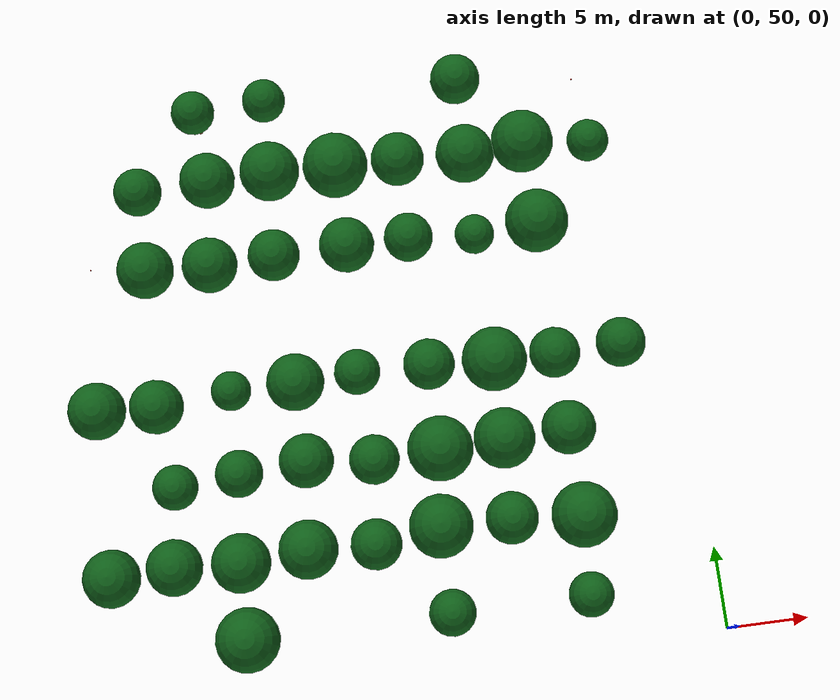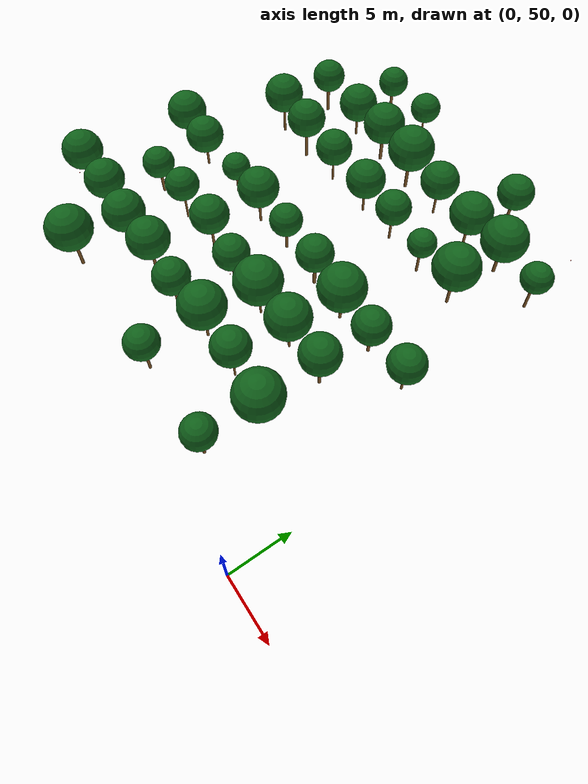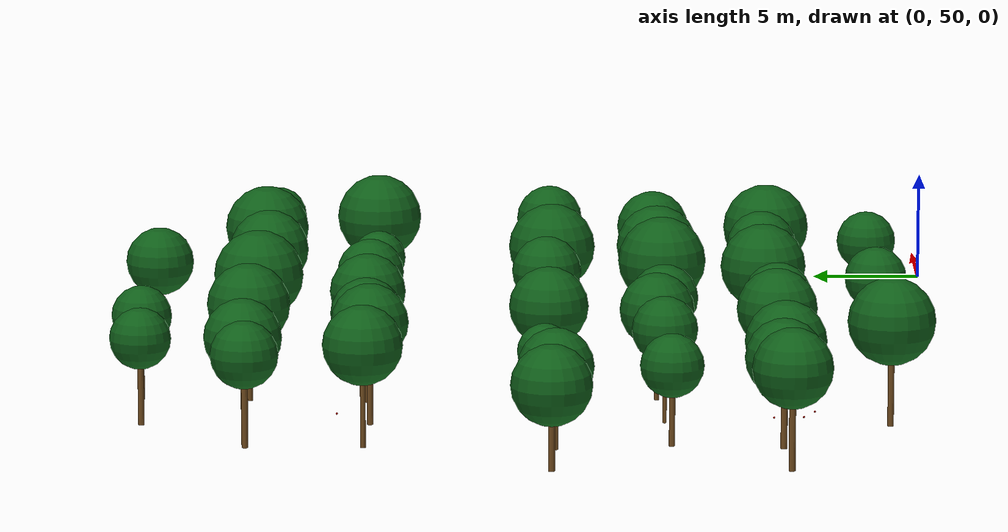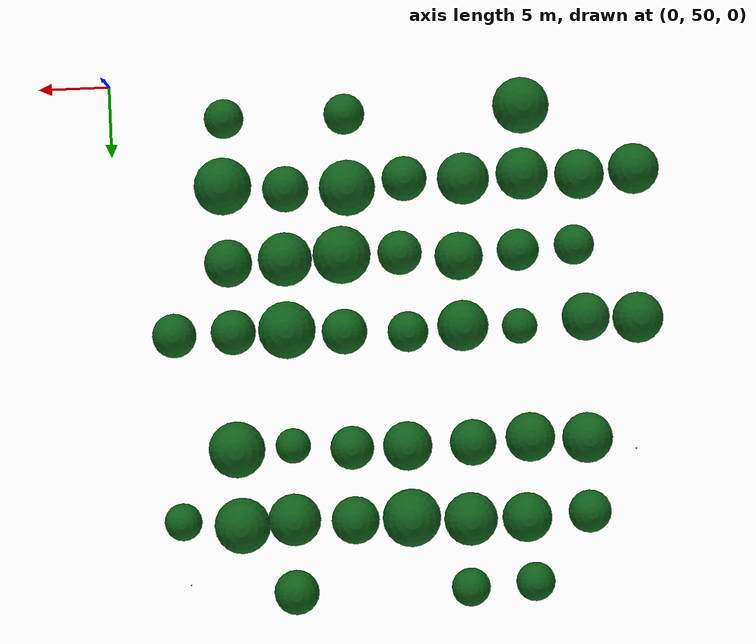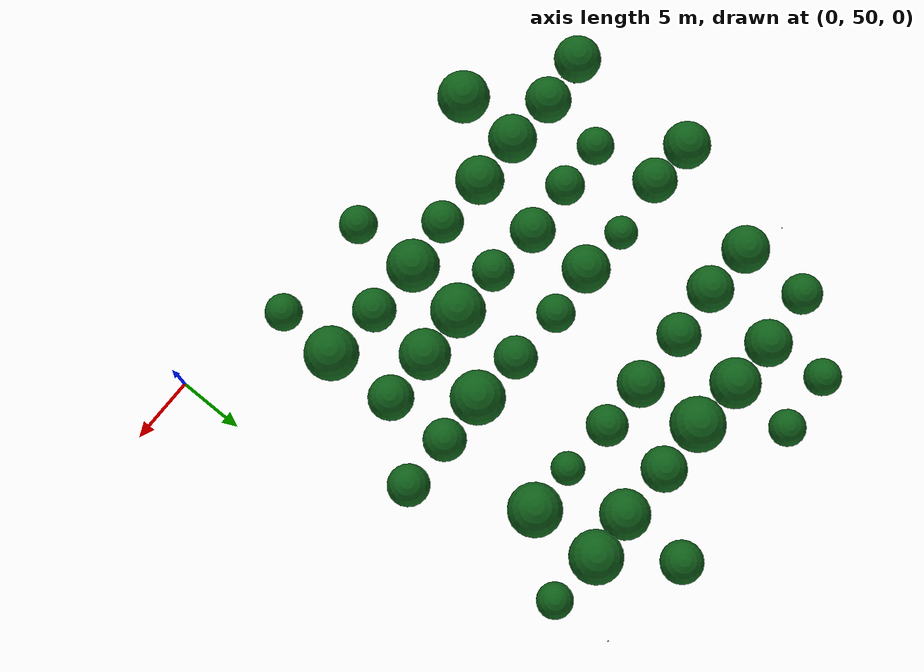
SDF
<sdf version="1.9">
 <world name="cheongsong_orchard">
  <model name="apple_tree_1766">
   <static>true</static>
   <pose>-28.48 52.96 0 0 0 0</pose>
   <link name="link">
    <collision name="trunk_col">
     <pose>0 0 1.37 0 0 0</pose>
     <geometry><cylinder><radius>0.135</radius><length>2.75</length></cylinder></geometry>
    </collision>
    <visual name="trunk_vis">
     <pose>0 0 1.37 0 0 0</pose>
     <geometry><cylinder><radius>0.135</radius><length>2.75</length></cylinder></geometry>
     <material><ambient>0.35 0.22 0.08 1</ambient><diffuse>0.45 0.30 0.12 1</diffuse></material>
    </visual>
    <collision name="canopy_col">
     <pose>0 0 4.67 0 0 0</pose>
     <geometry><sphere><radius>1.92</radius></sphere></geometry>
    </collision>
    <visual name="canopy_vis">
     <pose>0 0 4.67 0 0 0</pose>
     <geometry><sphere><radius>1.92</radius></sphere></geometry>
     <material><ambient>0.04 0.28 0.06 1</ambient><diffuse>0.06 0.38 0.10 1</diffuse></material>
    </visual>
   </link>
  </model>
  <model name="apple_tree_1769">
   <static>true</static>
   <pose>-16.44 52.99 0 0 0 0</pose>
   <link name="link">
    <collision name="trunk_col">
     <pose>0 0 1.19 0 0 0</pose>
     <geometry><cylinder><radius>0.117</radius><length>2.39</length></cylinder></geometry>
    </collision>
    <visual name="trunk_vis">
     <pose>0 0 1.19 0 0 0</pose>
     <geometry><cylinder><radius>0.117</radius><length>2.39</length></cylinder></geometry>
     <material><ambient>0.35 0.22 0.08 1</ambient><diffuse>0.45 0.30 0.12 1</diffuse></material>
    </visual>
    <collision name="canopy_col">
     <pose>0 0 3.78 0 0 0</pose>
     <geometry><sphere><radius>1.40</radius></sphere></geometry>
    </collision>
    <visual name="canopy_vis">
     <pose>0 0 3.78 0 0 0</pose>
     <geometry><sphere><radius>1.40</radius></sphere></geometry>
     <material><ambient>0.04 0.28 0.06 1</ambient><diffuse>0.06 0.38 0.10 1</diffuse></material>
    </visual>
   </link>
  </model>
  <model name="apple_tree_1771">
   <static>true</static>
   <pose>-8.17 52.98 0 0 0 0</pose>
   <link name="link">
    <collision name="trunk_col">
     <pose>0 0 1.13 0 0 0</pose>
     <geometry><cylinder><radius>0.124</radius><length>2.26</length></cylinder></geometry>
    </collision>
    <visual name="trunk_vis">
     <pose>0 0 1.13 0 0 0</pose>
     <geometry><cylinder><radius>0.124</radius><length>2.26</length></cylinder></geometry>
     <material><ambient>0.35 0.22 0.08 1</ambient><diffuse>0.45 0.30 0.12 1</diffuse></material>
    </visual>
    <collision name="canopy_col">
     <pose>0 0 3.62 0 0 0</pose>
     <geometry><sphere><radius>1.36</radius></sphere></geometry>
    </collision>
    <visual name="canopy_vis">
     <pose>0 0 3.62 0 0 0</pose>
     <geometry><sphere><radius>1.36</radius></sphere></geometry>
     <material><ambient>0.04 0.28 0.06 1</ambient><diffuse>0.06 0.38 0.10 1</diffuse></material>
    </visual>
   </link>
  </model>
  <model name="apple_tree_1820">
   <static>true</static>
   <pose>-36.03 57.55 0 0 0 0</pose>
   <link name="link">
    <collision name="trunk_col">
     <pose>0 0 1.37 0 0 0</pose>
     <geometry><cylinder><radius>0.141</radius><length>2.73</length></cylinder></geometry>
    </collision>
    <visual name="trunk_vis">
     <pose>0 0 1.37 0 0 0</pose>
     <geometry><cylinder><radius>0.141</radius><length>2.73</length></cylinder></geometry>
     <material><ambient>0.35 0.22 0.08 1</ambient><diffuse>0.45 0.30 0.12 1</diffuse></material>
    </visual>
    <collision name="canopy_col">
     <pose>0 0 4.46 0 0 0</pose>
     <geometry><sphere><radius>1.73</radius></sphere></geometry>
    </collision>
    <visual name="canopy_vis">
     <pose>0 0 4.46 0 0 0</pose>
     <geometry><sphere><radius>1.73</radius></sphere></geometry>
     <material><ambient>0.04 0.28 0.06 1</ambient><diffuse>0.06 0.38 0.10 1</diffuse></material>
    </visual>
   </link>
  </model>
  <model name="apple_tree_1821">
   <static>true</static>
   <pose>-32.37 57.75 0 0 0 0</pose>
   <link name="link">
    <collision name="trunk_col">
     <pose>0 0 1.16 0 0 0</pose>
     <geometry><cylinder><radius>0.139</radius><length>2.31</length></cylinder></geometry>
    </collision>
    <visual name="trunk_vis">
     <pose>0 0 1.16 0 0 0</pose>
     <geometry><cylinder><radius>0.139</radius><length>2.31</length></cylinder></geometry>
     <material><ambient>0.35 0.22 0.08 1</ambient><diffuse>0.45 0.30 0.12 1</diffuse></material>
    </visual>
    <collision name="canopy_col">
     <pose>0 0 4.01 0 0 0</pose>
     <geometry><sphere><radius>1.70</radius></sphere></geometry>
    </collision>
    <visual name="canopy_vis">
     <pose>0 0 4.01 0 0 0</pose>
     <geometry><sphere><radius>1.70</radius></sphere></geometry>
     <material><ambient>0.04 0.28 0.06 1</ambient><diffuse>0.06 0.38 0.10 1</diffuse></material>
    </visual>
   </link>
  </model>
  <model name="apple_tree_1822">
   <static>true</static>
   <pose>-28.47 57.53 0 0 0 0</pose>
   <link name="link">
    <collision name="trunk_col">
     <pose>0 0 0.99 0 0 0</pose>
     <geometry><cylinder><radius>0.113</radius><length>1.98</length></cylinder></geometry>
    </collision>
    <visual name="trunk_vis">
     <pose>0 0 0.99 0 0 0</pose>
     <geometry><cylinder><radius>0.113</radius><length>1.98</length></cylinder></geometry>
     <material><ambient>0.35 0.22 0.08 1</ambient><diffuse>0.45 0.30 0.12 1</diffuse></material>
    </visual>
    <collision name="canopy_col">
     <pose>0 0 3.77 0 0 0</pose>
     <geometry><sphere><radius>1.79</radius></sphere></geometry>
    </collision>
    <visual name="canopy_vis">
     <pose>0 0 3.77 0 0 0</pose>
     <geometry><sphere><radius>1.79</radius></sphere></geometry>
     <material><ambient>0.04 0.28 0.06 1</ambient><diffuse>0.06 0.38 0.10 1</diffuse></material>
    </visual>
   </link>
  </model>
  <model name="apple_tree_1823">
   <static>true</static>
   <pose>-24.40 57.76 0 0 0 0</pose>
   <link name="link">
    <collision name="trunk_col">
     <pose>0 0 1.24 0 0 0</pose>
     <geometry><cylinder><radius>0.133</radius><length>2.48</length></cylinder></geometry>
    </collision>
    <visual name="trunk_vis">
     <pose>0 0 1.24 0 0 0</pose>
     <geometry><cylinder><radius>0.133</radius><length>2.48</length></cylinder></geometry>
     <material><ambient>0.35 0.22 0.08 1</ambient><diffuse>0.45 0.30 0.12 1</diffuse></material>
    </visual>
    <collision name="canopy_col">
     <pose>0 0 4.25 0 0 0</pose>
     <geometry><sphere><radius>1.78</radius></sphere></geometry>
    </collision>
    <visual name="canopy_vis">
     <pose>0 0 4.25 0 0 0</pose>
     <geometry><sphere><radius>1.78</radius></sphere></geometry>
     <material><ambient>0.04 0.28 0.06 1</ambient><diffuse>0.06 0.38 0.10 1</diffuse></material>
    </visual>
   </link>
  </model>
  <model name="apple_tree_1824">
   <static>true</static>
   <pose>-20.39 57.57 0 0 0 0</pose>
   <link name="link">
    <collision name="trunk_col">
     <pose>0 0 1.14 0 0 0</pose>
     <geometry><cylinder><radius>0.096</radius><length>2.29</length></cylinder></geometry>
    </collision>
    <visual name="trunk_vis">
     <pose>0 0 1.14 0 0 0</pose>
     <geometry><cylinder><radius>0.096</radius><length>2.29</length></cylinder></geometry>
     <material><ambient>0.35 0.22 0.08 1</ambient><diffuse>0.45 0.30 0.12 1</diffuse></material>
    </visual>
    <collision name="canopy_col">
     <pose>0 0 3.83 0 0 0</pose>
     <geometry><sphere><radius>1.54</radius></sphere></geometry>
    </collision>
    <visual name="canopy_vis">
     <pose>0 0 3.83 0 0 0</pose>
     <geometry><sphere><radius>1.54</radius></sphere></geometry>
     <material><ambient>0.04 0.28 0.06 1</ambient><diffuse>0.06 0.38 0.10 1</diffuse></material>
    </visual>
   </link>
  </model>
  <model name="apple_tree_1825">
   <static>true</static>
   <pose>-16.45 58.09 0 0 0 0</pose>
   <link name="link">
    <collision name="trunk_col">
     <pose>0 0 1.20 0 0 0</pose>
     <geometry><cylinder><radius>0.109</radius><length>2.40</length></cylinder></geometry>
    </collision>
    <visual name="trunk_vis">
     <pose>0 0 1.20 0 0 0</pose>
     <geometry><cylinder><radius>0.109</radius><length>2.40</length></cylinder></geometry>
     <material><ambient>0.35 0.22 0.08 1</ambient><diffuse>0.45 0.30 0.12 1</diffuse></material>
    </visual>
    <collision name="canopy_col">
     <pose>0 0 4.32 0 0 0</pose>
     <geometry><sphere><radius>1.92</radius></sphere></geometry>
    </collision>
    <visual name="canopy_vis">
     <pose>0 0 4.32 0 0 0</pose>
     <geometry><sphere><radius>1.92</radius></sphere></geometry>
     <material><ambient>0.04 0.28 0.06 1</ambient><diffuse>0.06 0.38 0.10 1</diffuse></material>
    </visual>
   </link>
  </model>
  <model name="apple_tree_1826">
   <static>true</static>
   <pose>-12.23 58.02 0 0 0 0</pose>
   <link name="link">
    <collision name="trunk_col">
     <pose>0 0 1.37 0 0 0</pose>
     <geometry><cylinder><radius>0.080</radius><length>2.74</length></cylinder></geometry>
    </collision>
    <visual name="trunk_vis">
     <pose>0 0 1.37 0 0 0</pose>
     <geometry><cylinder><radius>0.080</radius><length>2.74</length></cylinder></geometry>
     <material><ambient>0.35 0.22 0.08 1</ambient><diffuse>0.45 0.30 0.12 1</diffuse></material>
    </visual>
    <collision name="canopy_col">
     <pose>0 0 4.32 0 0 0</pose>
     <geometry><sphere><radius>1.58</radius></sphere></geometry>
    </collision>
    <visual name="canopy_vis">
     <pose>0 0 4.32 0 0 0</pose>
     <geometry><sphere><radius>1.58</radius></sphere></geometry>
     <material><ambient>0.04 0.28 0.06 1</ambient><diffuse>0.06 0.38 0.10 1</diffuse></material>
    </visual>
   </link>
  </model>
  <model name="apple_tree_1827">
   <static>true</static>
   <pose>-7.95 57.66 0 0 0 0</pose>
   <link name="link">
    <collision name="trunk_col">
     <pose>0 0 1.13 0 0 0</pose>
     <geometry><cylinder><radius>0.118</radius><length>2.26</length></cylinder></geometry>
    </collision>
    <visual name="trunk_vis">
     <pose>0 0 1.13 0 0 0</pose>
     <geometry><cylinder><radius>0.118</radius><length>2.26</length></cylinder></geometry>
     <material><ambient>0.35 0.22 0.08 1</ambient><diffuse>0.45 0.30 0.12 1</diffuse></material>
    </visual>
    <collision name="canopy_col">
     <pose>0 0 4.23 0 0 0</pose>
     <geometry><sphere><radius>1.97</radius></sphere></geometry>
    </collision>
    <visual name="canopy_vis">
     <pose>0 0 4.23 0 0 0</pose>
     <geometry><sphere><radius>1.97</radius></sphere></geometry>
     <material><ambient>0.04 0.28 0.06 1</ambient><diffuse>0.06 0.38 0.10 1</diffuse></material>
    </visual>
   </link>
  </model>
  <model name="apple_tree_1877">
   <static>true</static>
   <pose>-31.89 62.53 0 0 0 0</pose>
   <link name="link">
    <collision name="trunk_col">
     <pose>0 0 1.08 0 0 0</pose>
     <geometry><cylinder><radius>0.129</radius><length>2.17</length></cylinder></geometry>
    </collision>
    <visual name="trunk_vis">
     <pose>0 0 1.08 0 0 0</pose>
     <geometry><cylinder><radius>0.129</radius><length>2.17</length></cylinder></geometry>
     <material><ambient>0.35 0.22 0.08 1</ambient><diffuse>0.45 0.30 0.12 1</diffuse></material>
    </visual>
    <collision name="canopy_col">
     <pose>0 0 3.54 0 0 0</pose>
     <geometry><sphere><radius>1.38</radius></sphere></geometry>
    </collision>
    <visual name="canopy_vis">
     <pose>0 0 3.54 0 0 0</pose>
     <geometry><sphere><radius>1.38</radius></sphere></geometry>
     <material><ambient>0.04 0.28 0.06 1</ambient><diffuse>0.06 0.38 0.10 1</diffuse></material>
    </visual>
   </link>
  </model>
  <model name="apple_tree_1878">
   <static>true</static>
   <pose>-27.96 62.77 0 0 0 0</pose>
   <link name="link">
    <collision name="trunk_col">
     <pose>0 0 1.37 0 0 0</pose>
     <geometry><cylinder><radius>0.090</radius><length>2.74</length></cylinder></geometry>
    </collision>
    <visual name="trunk_vis">
     <pose>0 0 1.37 0 0 0</pose>
     <geometry><cylinder><radius>0.090</radius><length>2.74</length></cylinder></geometry>
     <material><ambient>0.35 0.22 0.08 1</ambient><diffuse>0.45 0.30 0.12 1</diffuse></material>
    </visual>
    <collision name="canopy_col">
     <pose>0 0 4.18 0 0 0</pose>
     <geometry><sphere><radius>1.44</radius></sphere></geometry>
    </collision>
    <visual name="canopy_vis">
     <pose>0 0 4.18 0 0 0</pose>
     <geometry><sphere><radius>1.44</radius></sphere></geometry>
     <material><ambient>0.04 0.28 0.06 1</ambient><diffuse>0.06 0.38 0.10 1</diffuse></material>
    </visual>
   </link>
  </model>
  <model name="apple_tree_1879">
   <static>true</static>
   <pose>-23.91 63.03 0 0 0 0</pose>
   <link name="link">
    <collision name="trunk_col">
     <pose>0 0 1.21 0 0 0</pose>
     <geometry><cylinder><radius>0.111</radius><length>2.42</length></cylinder></geometry>
    </collision>
    <visual name="trunk_vis">
     <pose>0 0 1.21 0 0 0</pose>
     <geometry><cylinder><radius>0.111</radius><length>2.42</length></cylinder></geometry>
     <material><ambient>0.35 0.22 0.08 1</ambient><diffuse>0.45 0.30 0.12 1</diffuse></material>
    </visual>
    <collision name="canopy_col">
     <pose>0 0 4.07 0 0 0</pose>
     <geometry><sphere><radius>1.65</radius></sphere></geometry>
    </collision>
    <visual name="canopy_vis">
     <pose>0 0 4.07 0 0 0</pose>
     <geometry><sphere><radius>1.65</radius></sphere></geometry>
     <material><ambient>0.04 0.28 0.06 1</ambient><diffuse>0.06 0.38 0.10 1</diffuse></material>
    </visual>
   </link>
  </model>
  <model name="apple_tree_1880">
   <static>true</static>
   <pose>-19.89 62.63 0 0 0 0</pose>
   <link name="link">
    <collision name="trunk_col">
     <pose>0 0 1.07 0 0 0</pose>
     <geometry><cylinder><radius>0.116</radius><length>2.13</length></cylinder></geometry>
    </collision>
    <visual name="trunk_vis">
     <pose>0 0 1.07 0 0 0</pose>
     <geometry><cylinder><radius>0.116</radius><length>2.13</length></cylinder></geometry>
     <material><ambient>0.35 0.22 0.08 1</ambient><diffuse>0.45 0.30 0.12 1</diffuse></material>
    </visual>
    <collision name="canopy_col">
     <pose>0 0 3.65 0 0 0</pose>
     <geometry><sphere><radius>1.52</radius></sphere></geometry>
    </collision>
    <visual name="canopy_vis">
     <pose>0 0 3.65 0 0 0</pose>
     <geometry><sphere><radius>1.52</radius></sphere></geometry>
     <material><ambient>0.04 0.28 0.06 1</ambient><diffuse>0.06 0.38 0.10 1</diffuse></material>
    </visual>
   </link>
  </model>
  <model name="apple_tree_1881">
   <static>true</static>
   <pose>-15.90 62.66 0 0 0 0</pose>
   <link name="link">
    <collision name="trunk_col">
     <pose>0 0 1.24 0 0 0</pose>
     <geometry><cylinder><radius>0.089</radius><length>2.47</length></cylinder></geometry>
    </collision>
    <visual name="trunk_vis">
     <pose>0 0 1.24 0 0 0</pose>
     <geometry><cylinder><radius>0.089</radius><length>2.47</length></cylinder></geometry>
     <material><ambient>0.35 0.22 0.08 1</ambient><diffuse>0.45 0.30 0.12 1</diffuse></material>
    </visual>
    <collision name="canopy_col">
     <pose>0 0 4.46 0 0 0</pose>
     <geometry><sphere><radius>1.98</radius></sphere></geometry>
    </collision>
    <visual name="canopy_vis">
     <pose>0 0 4.46 0 0 0</pose>
     <geometry><sphere><radius>1.98</radius></sphere></geometry>
     <material><ambient>0.04 0.28 0.06 1</ambient><diffuse>0.06 0.38 0.10 1</diffuse></material>
    </visual>
   </link>
  </model>
  <model name="apple_tree_1882">
   <static>true</static>
   <pose>-12.02 62.81 0 0 0 0</pose>
   <link name="link">
    <collision name="trunk_col">
     <pose>0 0 1.21 0 0 0</pose>
     <geometry><cylinder><radius>0.102</radius><length>2.41</length></cylinder></geometry>
    </collision>
    <visual name="trunk_vis">
     <pose>0 0 1.21 0 0 0</pose>
     <geometry><cylinder><radius>0.102</radius><length>2.41</length></cylinder></geometry>
     <material><ambient>0.35 0.22 0.08 1</ambient><diffuse>0.45 0.30 0.12 1</diffuse></material>
    </visual>
    <collision name="canopy_col">
     <pose>0 0 4.26 0 0 0</pose>
     <geometry><sphere><radius>1.85</radius></sphere></geometry>
    </collision>
    <visual name="canopy_vis">
     <pose>0 0 4.26 0 0 0</pose>
     <geometry><sphere><radius>1.85</radius></sphere></geometry>
     <material><ambient>0.04 0.28 0.06 1</ambient><diffuse>0.06 0.38 0.10 1</diffuse></material>
    </visual>
   </link>
  </model>
  <model name="apple_tree_1883">
   <static>true</static>
   <pose>-8.13 62.94 0 0 0 0</pose>
   <link name="link">
    <collision name="trunk_col">
     <pose>0 0 1.32 0 0 0</pose>
     <geometry><cylinder><radius>0.125</radius><length>2.65</length></cylinder></geometry>
    </collision>
    <visual name="trunk_vis">
     <pose>0 0 1.32 0 0 0</pose>
     <geometry><cylinder><radius>0.125</radius><length>2.65</length></cylinder></geometry>
     <material><ambient>0.35 0.22 0.08 1</ambient><diffuse>0.45 0.30 0.12 1</diffuse></material>
    </visual>
    <collision name="canopy_col">
     <pose>0 0 4.29 0 0 0</pose>
     <geometry><sphere><radius>1.64</radius></sphere></geometry>
    </collision>
    <visual name="canopy_vis">
     <pose>0 0 4.29 0 0 0</pose>
     <geometry><sphere><radius>1.64</radius></sphere></geometry>
     <material><ambient>0.04 0.28 0.06 1</ambient><diffuse>0.06 0.38 0.10 1</diffuse></material>
    </visual>
   </link>
  </model>
  <model name="apple_tree_1933">
   <static>true</static>
   <pose>-36.06 67.70 0 0 0 0</pose>
   <link name="link">
    <collision name="trunk_col">
     <pose>0 0 0.99 0 0 0</pose>
     <geometry><cylinder><radius>0.143</radius><length>1.99</length></cylinder></geometry>
    </collision>
    <visual name="trunk_vis">
     <pose>0 0 0.99 0 0 0</pose>
     <geometry><cylinder><radius>0.143</radius><length>1.99</length></cylinder></geometry>
     <material><ambient>0.35 0.22 0.08 1</ambient><diffuse>0.45 0.30 0.12 1</diffuse></material>
    </visual>
    <collision name="canopy_col">
     <pose>0 0 3.73 0 0 0</pose>
     <geometry><sphere><radius>1.75</radius></sphere></geometry>
    </collision>
    <visual name="canopy_vis">
     <pose>0 0 3.73 0 0 0</pose>
     <geometry><sphere><radius>1.75</radius></sphere></geometry>
     <material><ambient>0.04 0.28 0.06 1</ambient><diffuse>0.06 0.38 0.10 1</diffuse></material>
    </visual>
   </link>
  </model>
  <model name="apple_tree_1934">
   <static>true</static>
   <pose>-32.49 67.51 0 0 0 0</pose>
   <link name="link">
    <collision name="trunk_col">
     <pose>0 0 1.00 0 0 0</pose>
     <geometry><cylinder><radius>0.107</radius><length>2.01</length></cylinder></geometry>
    </collision>
    <visual name="trunk_vis">
     <pose>0 0 1.00 0 0 0</pose>
     <geometry><cylinder><radius>0.107</radius><length>2.01</length></cylinder></geometry>
     <material><ambient>0.35 0.22 0.08 1</ambient><diffuse>0.45 0.30 0.12 1</diffuse></material>
    </visual>
    <collision name="canopy_col">
     <pose>0 0 3.66 0 0 0</pose>
     <geometry><sphere><radius>1.65</radius></sphere></geometry>
    </collision>
    <visual name="canopy_vis">
     <pose>0 0 3.66 0 0 0</pose>
     <geometry><sphere><radius>1.65</radius></sphere></geometry>
     <material><ambient>0.04 0.28 0.06 1</ambient><diffuse>0.06 0.38 0.10 1</diffuse></material>
    </visual>
   </link>
  </model>
  <model name="apple_tree_1935">
   <static>true</static>
   <pose>-27.98 67.97 0 0 0 0</pose>
   <link name="link">
    <collision name="trunk_col">
     <pose>0 0 0.99 0 0 0</pose>
     <geometry><cylinder><radius>0.118</radius><length>1.98</length></cylinder></geometry>
    </collision>
    <visual name="trunk_vis">
     <pose>0 0 0.99 0 0 0</pose>
     <geometry><cylinder><radius>0.118</radius><length>1.98</length></cylinder></geometry>
     <material><ambient>0.35 0.22 0.08 1</ambient><diffuse>0.45 0.30 0.12 1</diffuse></material>
    </visual>
    <collision name="canopy_col">
     <pose>0 0 3.20 0 0 0</pose>
     <geometry><sphere><radius>1.22</radius></sphere></geometry>
    </collision>
    <visual name="canopy_vis">
     <pose>0 0 3.20 0 0 0</pose>
     <geometry><sphere><radius>1.22</radius></sphere></geometry>
     <material><ambient>0.04 0.28 0.06 1</ambient><diffuse>0.06 0.38 0.10 1</diffuse></material>
    </visual>
   </link>
  </model>
  <model name="apple_tree_1936">
   <static>true</static>
   <pose>-24.00 67.80 0 0 0 0</pose>
   <link name="link">
    <collision name="trunk_col">
     <pose>0 0 1.25 0 0 0</pose>
     <geometry><cylinder><radius>0.107</radius><length>2.51</length></cylinder></geometry>
    </collision>
    <visual name="trunk_vis">
     <pose>0 0 1.25 0 0 0</pose>
     <geometry><cylinder><radius>0.107</radius><length>2.51</length></cylinder></geometry>
     <material><ambient>0.35 0.22 0.08 1</ambient><diffuse>0.45 0.30 0.12 1</diffuse></material>
    </visual>
    <collision name="canopy_col">
     <pose>0 0 4.26 0 0 0</pose>
     <geometry><sphere><radius>1.75</radius></sphere></geometry>
    </collision>
    <visual name="canopy_vis">
     <pose>0 0 4.26 0 0 0</pose>
     <geometry><sphere><radius>1.75</radius></sphere></geometry>
     <material><ambient>0.04 0.28 0.06 1</ambient><diffuse>0.06 0.38 0.10 1</diffuse></material>
    </visual>
   </link>
  </model>
  <model name="apple_tree_1937">
   <static>true</static>
   <pose>-20.26 68.06 0 0 0 0</pose>
   <link name="link">
    <collision name="trunk_col">
     <pose>0 0 1.09 0 0 0</pose>
     <geometry><cylinder><radius>0.114</radius><length>2.18</length></cylinder></geometry>
    </collision>
    <visual name="trunk_vis">
     <pose>0 0 1.09 0 0 0</pose>
     <geometry><cylinder><radius>0.114</radius><length>2.18</length></cylinder></geometry>
     <material><ambient>0.35 0.22 0.08 1</ambient><diffuse>0.45 0.30 0.12 1</diffuse></material>
    </visual>
    <collision name="canopy_col">
     <pose>0 0 3.58 0 0 0</pose>
     <geometry><sphere><radius>1.40</radius></sphere></geometry>
    </collision>
    <visual name="canopy_vis">
     <pose>0 0 3.58 0 0 0</pose>
     <geometry><sphere><radius>1.40</radius></sphere></geometry>
     <material><ambient>0.04 0.28 0.06 1</ambient><diffuse>0.06 0.38 0.10 1</diffuse></material>
    </visual>
   </link>
  </model>
  <model name="apple_tree_1938">
   <static>true</static>
   <pose>-15.90 67.89 0 0 0 0</pose>
   <link name="link">
    <collision name="trunk_col">
     <pose>0 0 1.21 0 0 0</pose>
     <geometry><cylinder><radius>0.143</radius><length>2.42</length></cylinder></geometry>
    </collision>
    <visual name="trunk_vis">
     <pose>0 0 1.21 0 0 0</pose>
     <geometry><cylinder><radius>0.143</radius><length>2.42</length></cylinder></geometry>
     <material><ambient>0.35 0.22 0.08 1</ambient><diffuse>0.45 0.30 0.12 1</diffuse></material>
    </visual>
    <collision name="canopy_col">
     <pose>0 0 3.98 0 0 0</pose>
     <geometry><sphere><radius>1.56</radius></sphere></geometry>
    </collision>
    <visual name="canopy_vis">
     <pose>0 0 3.98 0 0 0</pose>
     <geometry><sphere><radius>1.56</radius></sphere></geometry>
     <material><ambient>0.04 0.28 0.06 1</ambient><diffuse>0.06 0.38 0.10 1</diffuse></material>
    </visual>
   </link>
  </model>
  <model name="apple_tree_1939">
   <static>true</static>
   <pose>-11.96 67.64 0 0 0 0</pose>
   <link name="link">
    <collision name="trunk_col">
     <pose>0 0 1.11 0 0 0</pose>
     <geometry><cylinder><radius>0.131</radius><length>2.23</length></cylinder></geometry>
    </collision>
    <visual name="trunk_vis">
     <pose>0 0 1.11 0 0 0</pose>
     <geometry><cylinder><radius>0.131</radius><length>2.23</length></cylinder></geometry>
     <material><ambient>0.35 0.22 0.08 1</ambient><diffuse>0.45 0.30 0.12 1</diffuse></material>
    </visual>
    <collision name="canopy_col">
     <pose>0 0 4.20 0 0 0</pose>
     <geometry><sphere><radius>1.97</radius></sphere></geometry>
    </collision>
    <visual name="canopy_vis">
     <pose>0 0 4.20 0 0 0</pose>
     <geometry><sphere><radius>1.97</radius></sphere></geometry>
     <material><ambient>0.04 0.28 0.06 1</ambient><diffuse>0.06 0.38 0.10 1</diffuse></material>
    </visual>
   </link>
  </model>
  <model name="apple_tree_1940">
   <static>true</static>
   <pose>-8.26 67.66 0 0 0 0</pose>
   <link name="link">
    <collision name="trunk_col">
     <pose>0 0 1.05 0 0 0</pose>
     <geometry><cylinder><radius>0.132</radius><length>2.11</length></cylinder></geometry>
    </collision>
    <visual name="trunk_vis">
     <pose>0 0 1.05 0 0 0</pose>
     <geometry><cylinder><radius>0.132</radius><length>2.11</length></cylinder></geometry>
     <material><ambient>0.35 0.22 0.08 1</ambient><diffuse>0.45 0.30 0.12 1</diffuse></material>
    </visual>
    <collision name="canopy_col">
     <pose>0 0 3.65 0 0 0</pose>
     <geometry><sphere><radius>1.55</radius></sphere></geometry>
    </collision>
    <visual name="canopy_vis">
     <pose>0 0 3.65 0 0 0</pose>
     <geometry><sphere><radius>1.55</radius></sphere></geometry>
     <material><ambient>0.04 0.28 0.06 1</ambient><diffuse>0.06 0.38 0.10 1</diffuse></material>
    </visual>
   </link>
  </model>
  <model name="apple_tree_1941">
   <static>true</static>
   <pose>-4.22 67.74 0 0 0 0</pose>
   <link name="link">
    <collision name="trunk_col">
     <pose>0 0 1.15 0 0 0</pose>
     <geometry><cylinder><radius>0.103</radius><length>2.30</length></cylinder></geometry>
    </collision>
    <visual name="trunk_vis">
     <pose>0 0 1.15 0 0 0</pose>
     <geometry><cylinder><radius>0.103</radius><length>2.30</length></cylinder></geometry>
     <material><ambient>0.35 0.22 0.08 1</ambient><diffuse>0.45 0.30 0.12 1</diffuse></material>
    </visual>
    <collision name="canopy_col">
     <pose>0 0 3.82 0 0 0</pose>
     <geometry><sphere><radius>1.52</radius></sphere></geometry>
    </collision>
    <visual name="canopy_vis">
     <pose>0 0 3.82 0 0 0</pose>
     <geometry><sphere><radius>1.52</radius></sphere></geometry>
     <material><ambient>0.04 0.28 0.06 1</ambient><diffuse>0.06 0.38 0.10 1</diffuse></material>
    </visual>
   </link>
  </model>
  <model name="apple_tree_1991">
   <static>true</static>
   <pose>-32.19 75.77 0 0 0 0</pose>
   <link name="link">
    <collision name="trunk_col">
     <pose>0 0 1.39 0 0 0</pose>
     <geometry><cylinder><radius>0.114</radius><length>2.78</length></cylinder></geometry>
    </collision>
    <visual name="trunk_vis">
     <pose>0 0 1.39 0 0 0</pose>
     <geometry><cylinder><radius>0.114</radius><length>2.78</length></cylinder></geometry>
     <material><ambient>0.35 0.22 0.08 1</ambient><diffuse>0.45 0.30 0.12 1</diffuse></material>
    </visual>
    <collision name="canopy_col">
     <pose>0 0 4.51 0 0 0</pose>
     <geometry><sphere><radius>1.73</radius></sphere></geometry>
    </collision>
    <visual name="canopy_vis">
     <pose>0 0 4.51 0 0 0</pose>
     <geometry><sphere><radius>1.73</radius></sphere></geometry>
     <material><ambient>0.04 0.28 0.06 1</ambient><diffuse>0.06 0.38 0.10 1</diffuse></material>
    </visual>
   </link>
  </model>
  <model name="apple_tree_1992">
   <static>true</static>
   <pose>-28.28 75.57 0 0 0 0</pose>
   <link name="link">
    <collision name="trunk_col">
     <pose>0 0 1.44 0 0 0</pose>
     <geometry><cylinder><radius>0.129</radius><length>2.88</length></cylinder></geometry>
    </collision>
    <visual name="trunk_vis">
     <pose>0 0 1.44 0 0 0</pose>
     <geometry><cylinder><radius>0.129</radius><length>2.88</length></cylinder></geometry>
     <material><ambient>0.35 0.22 0.08 1</ambient><diffuse>0.45 0.30 0.12 1</diffuse></material>
    </visual>
    <collision name="canopy_col">
     <pose>0 0 4.57 0 0 0</pose>
     <geometry><sphere><radius>1.69</radius></sphere></geometry>
    </collision>
    <visual name="canopy_vis">
     <pose>0 0 4.57 0 0 0</pose>
     <geometry><sphere><radius>1.69</radius></sphere></geometry>
     <material><ambient>0.04 0.28 0.06 1</ambient><diffuse>0.06 0.38 0.10 1</diffuse></material>
    </visual>
   </link>
  </model>
  <model name="apple_tree_1993">
   <static>true</static>
   <pose>-24.40 75.82 0 0 0 0</pose>
   <link name="link">
    <collision name="trunk_col">
     <pose>0 0 1.22 0 0 0</pose>
     <geometry><cylinder><radius>0.095</radius><length>2.43</length></cylinder></geometry>
    </collision>
    <visual name="trunk_vis">
     <pose>0 0 1.22 0 0 0</pose>
     <geometry><cylinder><radius>0.095</radius><length>2.43</length></cylinder></geometry>
     <material><ambient>0.35 0.22 0.08 1</ambient><diffuse>0.45 0.30 0.12 1</diffuse></material>
    </visual>
    <collision name="canopy_col">
     <pose>0 0 4.02 0 0 0</pose>
     <geometry><sphere><radius>1.59</radius></sphere></geometry>
    </collision>
    <visual name="canopy_vis">
     <pose>0 0 4.02 0 0 0</pose>
     <geometry><sphere><radius>1.59</radius></sphere></geometry>
     <material><ambient>0.04 0.28 0.06 1</ambient><diffuse>0.06 0.38 0.10 1</diffuse></material>
    </visual>
   </link>
  </model>
  <model name="apple_tree_1994">
   <static>true</static>
   <pose>-19.92 75.89 0 0 0 0</pose>
   <link name="link">
    <collision name="trunk_col">
     <pose>0 0 1.14 0 0 0</pose>
     <geometry><cylinder><radius>0.102</radius><length>2.28</length></cylinder></geometry>
    </collision>
    <visual name="trunk_vis">
     <pose>0 0 1.14 0 0 0</pose>
     <geometry><cylinder><radius>0.102</radius><length>2.28</length></cylinder></geometry>
     <material><ambient>0.35 0.22 0.08 1</ambient><diffuse>0.45 0.30 0.12 1</diffuse></material>
    </visual>
    <collision name="canopy_col">
     <pose>0 0 3.97 0 0 0</pose>
     <geometry><sphere><radius>1.69</radius></sphere></geometry>
    </collision>
    <visual name="canopy_vis">
     <pose>0 0 3.97 0 0 0</pose>
     <geometry><sphere><radius>1.69</radius></sphere></geometry>
     <material><ambient>0.04 0.28 0.06 1</ambient><diffuse>0.06 0.38 0.10 1</diffuse></material>
    </visual>
   </link>
  </model>
  <model name="apple_tree_1995">
   <static>true</static>
   <pose>-16.12 75.87 0 0 0 0</pose>
   <link name="link">
    <collision name="trunk_col">
     <pose>0 0 1.23 0 0 0</pose>
     <geometry><cylinder><radius>0.104</radius><length>2.47</length></cylinder></geometry>
    </collision>
    <visual name="trunk_vis">
     <pose>0 0 1.23 0 0 0</pose>
     <geometry><cylinder><radius>0.104</radius><length>2.47</length></cylinder></geometry>
     <material><ambient>0.35 0.22 0.08 1</ambient><diffuse>0.45 0.30 0.12 1</diffuse></material>
    </visual>
    <collision name="canopy_col">
     <pose>0 0 3.97 0 0 0</pose>
     <geometry><sphere><radius>1.50</radius></sphere></geometry>
    </collision>
    <visual name="canopy_vis">
     <pose>0 0 3.97 0 0 0</pose>
     <geometry><sphere><radius>1.50</radius></sphere></geometry>
     <material><ambient>0.04 0.28 0.06 1</ambient><diffuse>0.06 0.38 0.10 1</diffuse></material>
    </visual>
   </link>
  </model>
  <model name="apple_tree_1996">
   <static>true</static>
   <pose>-12.08 75.59 0 0 0 0</pose>
   <link name="link">
    <collision name="trunk_col">
     <pose>0 0 1.25 0 0 0</pose>
     <geometry><cylinder><radius>0.113</radius><length>2.50</length></cylinder></geometry>
    </collision>
    <visual name="trunk_vis">
     <pose>0 0 1.25 0 0 0</pose>
     <geometry><cylinder><radius>0.113</radius><length>2.50</length></cylinder></geometry>
     <material><ambient>0.35 0.22 0.08 1</ambient><diffuse>0.45 0.30 0.12 1</diffuse></material>
    </visual>
    <collision name="canopy_col">
     <pose>0 0 3.72 0 0 0</pose>
     <geometry><sphere><radius>1.21</radius></sphere></geometry>
    </collision>
    <visual name="canopy_vis">
     <pose>0 0 3.72 0 0 0</pose>
     <geometry><sphere><radius>1.21</radius></sphere></geometry>
     <material><ambient>0.04 0.28 0.06 1</ambient><diffuse>0.06 0.38 0.10 1</diffuse></material>
    </visual>
   </link>
  </model>
  <model name="apple_tree_1997">
   <static>true</static>
   <pose>-8.27 75.66 0 0 0 0</pose>
   <link name="link">
    <collision name="trunk_col">
     <pose>0 0 1.44 0 0 0</pose>
     <geometry><cylinder><radius>0.128</radius><length>2.87</length></cylinder></geometry>
    </collision>
    <visual name="trunk_vis">
     <pose>0 0 1.44 0 0 0</pose>
     <geometry><cylinder><radius>0.128</radius><length>2.87</length></cylinder></geometry>
     <material><ambient>0.35 0.22 0.08 1</ambient><diffuse>0.45 0.30 0.12 1</diffuse></material>
    </visual>
    <collision name="canopy_col">
     <pose>0 0 4.80 0 0 0</pose>
     <geometry><sphere><radius>1.93</radius></sphere></geometry>
    </collision>
    <visual name="canopy_vis">
     <pose>0 0 4.80 0 0 0</pose>
     <geometry><sphere><radius>1.93</radius></sphere></geometry>
     <material><ambient>0.04 0.28 0.06 1</ambient><diffuse>0.06 0.38 0.10 1</diffuse></material>
    </visual>
   </link>
  </model>
  <model name="apple_tree_2046">
   <static>true</static>
   <pose>-32.22 80.83 0 0 0 0</pose>
   <link name="link">
    <collision name="trunk_col">
     <pose>0 0 1.31 0 0 0</pose>
     <geometry><cylinder><radius>0.142</radius><length>2.61</length></cylinder></geometry>
    </collision>
    <visual name="trunk_vis">
     <pose>0 0 1.31 0 0 0</pose>
     <geometry><cylinder><radius>0.142</radius><length>2.61</length></cylinder></geometry>
     <material><ambient>0.35 0.22 0.08 1</ambient><diffuse>0.45 0.30 0.12 1</diffuse></material>
    </visual>
    <collision name="canopy_col">
     <pose>0 0 4.09 0 0 0</pose>
     <geometry><sphere><radius>1.47</radius></sphere></geometry>
    </collision>
    <visual name="canopy_vis">
     <pose>0 0 4.09 0 0 0</pose>
     <geometry><sphere><radius>1.47</radius></sphere></geometry>
     <material><ambient>0.04 0.28 0.06 1</ambient><diffuse>0.06 0.38 0.10 1</diffuse></material>
    </visual>
   </link>
  </model>
  <model name="apple_tree_2047">
   <static>true</static>
   <pose>-27.94 81.10 0 0 0 0</pose>
   <link name="link">
    <collision name="trunk_col">
     <pose>0 0 1.05 0 0 0</pose>
     <geometry><cylinder><radius>0.104</radius><length>2.09</length></cylinder></geometry>
    </collision>
    <visual name="trunk_vis">
     <pose>0 0 1.05 0 0 0</pose>
     <geometry><cylinder><radius>0.104</radius><length>2.09</length></cylinder></geometry>
     <material><ambient>0.35 0.22 0.08 1</ambient><diffuse>0.45 0.30 0.12 1</diffuse></material>
    </visual>
    <collision name="canopy_col">
     <pose>0 0 3.80 0 0 0</pose>
     <geometry><sphere><radius>1.71</radius></sphere></geometry>
    </collision>
    <visual name="canopy_vis">
     <pose>0 0 3.80 0 0 0</pose>
     <geometry><sphere><radius>1.71</radius></sphere></geometry>
     <material><ambient>0.04 0.28 0.06 1</ambient><diffuse>0.06 0.38 0.10 1</diffuse></material>
    </visual>
   </link>
  </model>
  <model name="apple_tree_2048">
   <static>true</static>
   <pose>-24.04 81.02 0 0 0 0</pose>
   <link name="link">
    <collision name="trunk_col">
     <pose>0 0 1.25 0 0 0</pose>
     <geometry><cylinder><radius>0.148</radius><length>2.51</length></cylinder></geometry>
    </collision>
    <visual name="trunk_vis">
     <pose>0 0 1.25 0 0 0</pose>
     <geometry><cylinder><radius>0.148</radius><length>2.51</length></cylinder></geometry>
     <material><ambient>0.35 0.22 0.08 1</ambient><diffuse>0.45 0.30 0.12 1</diffuse></material>
    </visual>
    <collision name="canopy_col">
     <pose>0 0 4.34 0 0 0</pose>
     <geometry><sphere><radius>1.83</radius></sphere></geometry>
    </collision>
    <visual name="canopy_vis">
     <pose>0 0 4.34 0 0 0</pose>
     <geometry><sphere><radius>1.83</radius></sphere></geometry>
     <material><ambient>0.04 0.28 0.06 1</ambient><diffuse>0.06 0.38 0.10 1</diffuse></material>
    </visual>
   </link>
  </model>
  <model name="apple_tree_2049">
   <static>true</static>
   <pose>-19.99 80.75 0 0 0 0</pose>
   <link name="link">
    <collision name="trunk_col">
     <pose>0 0 1.38 0 0 0</pose>
     <geometry><cylinder><radius>0.142</radius><length>2.75</length></cylinder></geometry>
    </collision>
    <visual name="trunk_vis">
     <pose>0 0 1.38 0 0 0</pose>
     <geometry><cylinder><radius>0.142</radius><length>2.75</length></cylinder></geometry>
     <material><ambient>0.35 0.22 0.08 1</ambient><diffuse>0.45 0.30 0.12 1</diffuse></material>
    </visual>
    <collision name="canopy_col">
     <pose>0 0 4.75 0 0 0</pose>
     <geometry><sphere><radius>1.99</radius></sphere></geometry>
    </collision>
    <visual name="canopy_vis">
     <pose>0 0 4.75 0 0 0</pose>
     <geometry><sphere><radius>1.99</radius></sphere></geometry>
     <material><ambient>0.04 0.28 0.06 1</ambient><diffuse>0.06 0.38 0.10 1</diffuse></material>
    </visual>
   </link>
  </model>
  <model name="apple_tree_2050">
   <static>true</static>
   <pose>-16.16 80.82 0 0 0 0</pose>
   <link name="link">
    <collision name="trunk_col">
     <pose>0 0 1.26 0 0 0</pose>
     <geometry><cylinder><radius>0.098</radius><length>2.51</length></cylinder></geometry>
    </collision>
    <visual name="trunk_vis">
     <pose>0 0 1.26 0 0 0</pose>
     <geometry><cylinder><radius>0.098</radius><length>2.51</length></cylinder></geometry>
     <material><ambient>0.35 0.22 0.08 1</ambient><diffuse>0.45 0.30 0.12 1</diffuse></material>
    </visual>
    <collision name="canopy_col">
     <pose>0 0 4.15 0 0 0</pose>
     <geometry><sphere><radius>1.64</radius></sphere></geometry>
    </collision>
    <visual name="canopy_vis">
     <pose>0 0 4.15 0 0 0</pose>
     <geometry><sphere><radius>1.64</radius></sphere></geometry>
     <material><ambient>0.04 0.28 0.06 1</ambient><diffuse>0.06 0.38 0.10 1</diffuse></material>
    </visual>
   </link>
  </model>
  <model name="apple_tree_2051">
   <static>true</static>
   <pose>-12.00 80.64 0 0 0 0</pose>
   <link name="link">
    <collision name="trunk_col">
     <pose>0 0 1.15 0 0 0</pose>
     <geometry><cylinder><radius>0.109</radius><length>2.29</length></cylinder></geometry>
    </collision>
    <visual name="trunk_vis">
     <pose>0 0 1.15 0 0 0</pose>
     <geometry><cylinder><radius>0.109</radius><length>2.29</length></cylinder></geometry>
     <material><ambient>0.35 0.22 0.08 1</ambient><diffuse>0.45 0.30 0.12 1</diffuse></material>
    </visual>
    <collision name="canopy_col">
     <pose>0 0 4.09 0 0 0</pose>
     <geometry><sphere><radius>1.80</radius></sphere></geometry>
    </collision>
    <visual name="canopy_vis">
     <pose>0 0 4.09 0 0 0</pose>
     <geometry><sphere><radius>1.80</radius></sphere></geometry>
     <material><ambient>0.04 0.28 0.06 1</ambient><diffuse>0.06 0.38 0.10 1</diffuse></material>
    </visual>
   </link>
  </model>
  <model name="apple_tree_2052">
   <static>true</static>
   <pose>-8.43 80.89 0 0 0 0</pose>
   <link name="link">
    <collision name="trunk_col">
     <pose>0 0 1.20 0 0 0</pose>
     <geometry><cylinder><radius>0.138</radius><length>2.39</length></cylinder></geometry>
    </collision>
    <visual name="trunk_vis">
     <pose>0 0 1.20 0 0 0</pose>
     <geometry><cylinder><radius>0.138</radius><length>2.39</length></cylinder></geometry>
     <material><ambient>0.35 0.22 0.08 1</ambient><diffuse>0.45 0.30 0.12 1</diffuse></material>
    </visual>
    <collision name="canopy_col">
     <pose>0 0 4.31 0 0 0</pose>
     <geometry><sphere><radius>1.92</radius></sphere></geometry>
    </collision>
    <visual name="canopy_vis">
     <pose>0 0 4.31 0 0 0</pose>
     <geometry><sphere><radius>1.92</radius></sphere></geometry>
     <material><ambient>0.04 0.28 0.06 1</ambient><diffuse>0.06 0.38 0.10 1</diffuse></material>
    </visual>
   </link>
  </model>
  <model name="apple_tree_2053">
   <static>true</static>
   <pose>-4.38 80.51 0 0 0 0</pose>
   <link name="link">
    <collision name="trunk_col">
     <pose>0 0 1.36 0 0 0</pose>
     <geometry><cylinder><radius>0.115</radius><length>2.72</length></cylinder></geometry>
    </collision>
    <visual name="trunk_vis">
     <pose>0 0 1.36 0 0 0</pose>
     <geometry><cylinder><radius>0.115</radius><length>2.72</length></cylinder></geometry>
     <material><ambient>0.35 0.22 0.08 1</ambient><diffuse>0.45 0.30 0.12 1</diffuse></material>
    </visual>
    <collision name="canopy_col">
     <pose>0 0 4.01 0 0 0</pose>
     <geometry><sphere><radius>1.29</radius></sphere></geometry>
    </collision>
    <visual name="canopy_vis">
     <pose>0 0 4.01 0 0 0</pose>
     <geometry><sphere><radius>1.29</radius></sphere></geometry>
     <material><ambient>0.04 0.28 0.06 1</ambient><diffuse>0.06 0.38 0.10 1</diffuse></material>
    </visual>
   </link>
  </model>
  <model name="apple_tree_2104">
   <static>true</static>
   <pose>-28.35 85.52 0 0 0 0</pose>
   <link name="link">
    <collision name="trunk_col">
     <pose>0 0 1.26 0 0 0</pose>
     <geometry><cylinder><radius>0.133</radius><length>2.52</length></cylinder></geometry>
    </collision>
    <visual name="trunk_vis">
     <pose>0 0 1.26 0 0 0</pose>
     <geometry><cylinder><radius>0.133</radius><length>2.52</length></cylinder></geometry>
     <material><ambient>0.35 0.22 0.08 1</ambient><diffuse>0.45 0.30 0.12 1</diffuse></material>
    </visual>
    <collision name="canopy_col">
     <pose>0 0 3.86 0 0 0</pose>
     <geometry><sphere><radius>1.34</radius></sphere></geometry>
    </collision>
    <visual name="canopy_vis">
     <pose>0 0 3.86 0 0 0</pose>
     <geometry><sphere><radius>1.34</radius></sphere></geometry>
     <material><ambient>0.04 0.28 0.06 1</ambient><diffuse>0.06 0.38 0.10 1</diffuse></material>
    </visual>
   </link>
  </model>
  <model name="apple_tree_2105">
   <static>true</static>
   <pose>-23.91 85.74 0 0 0 0</pose>
   <link name="link">
    <collision name="trunk_col">
     <pose>0 0 1.24 0 0 0</pose>
     <geometry><cylinder><radius>0.081</radius><length>2.48</length></cylinder></geometry>
    </collision>
    <visual name="trunk_vis">
     <pose>0 0 1.24 0 0 0</pose>
     <geometry><cylinder><radius>0.081</radius><length>2.48</length></cylinder></geometry>
     <material><ambient>0.35 0.22 0.08 1</ambient><diffuse>0.45 0.30 0.12 1</diffuse></material>
    </visual>
    <collision name="canopy_col">
     <pose>0 0 3.81 0 0 0</pose>
     <geometry><sphere><radius>1.33</radius></sphere></geometry>
    </collision>
    <visual name="canopy_vis">
     <pose>0 0 3.81 0 0 0</pose>
     <geometry><sphere><radius>1.33</radius></sphere></geometry>
     <material><ambient>0.04 0.28 0.06 1</ambient><diffuse>0.06 0.38 0.10 1</diffuse></material>
    </visual>
   </link>
  </model>
  <model name="apple_tree_2108">
   <static>true</static>
   <pose>-11.94 85.68 0 0 0 0</pose>
   <link name="link">
    <collision name="trunk_col">
     <pose>0 0 0.98 0 0 0</pose>
     <geometry><cylinder><radius>0.127</radius><length>1.95</length></cylinder></geometry>
    </collision>
    <visual name="trunk_vis">
     <pose>0 0 0.98 0 0 0</pose>
     <geometry><cylinder><radius>0.127</radius><length>1.95</length></cylinder></geometry>
     <material><ambient>0.35 0.22 0.08 1</ambient><diffuse>0.45 0.30 0.12 1</diffuse></material>
    </visual>
    <collision name="canopy_col">
     <pose>0 0 3.50 0 0 0</pose>
     <geometry><sphere><radius>1.55</radius></sphere></geometry>
    </collision>
    <visual name="canopy_vis">
     <pose>0 0 3.50 0 0 0</pose>
     <geometry><sphere><radius>1.55</radius></sphere></geometry>
     <material><ambient>0.04 0.28 0.06 1</ambient><diffuse>0.06 0.38 0.10 1</diffuse></material>
    </visual>
   </link>
  </model>
  <model name="apple_1820_1">
   <static>true</static>
   <pose>-35.64 58.31 2.22 0 0 0</pose>
   <link name="link">
    <visual name="visual">
     <geometry><sphere><radius>0.04</radius></sphere></geometry>
     <material><ambient>0.7 0.05 0.02 1</ambient><diffuse>0.9 0.10 0.05 1</diffuse></material>
    </visual>
   </link>
  </model>
  <model name="apple_1820_2">
   <static>true</static>
   <pose>-35.66 56.59 2.48 0 0 0</pose>
   <link name="link">
    <visual name="visual">
     <geometry><sphere><radius>0.04</radius></sphere></geometry>
     <material><ambient>0.7 0.05 0.02 1</ambient><diffuse>0.9 0.10 0.05 1</diffuse></material>
    </visual>
   </link>
  </model>
  <model name="apple_1820_3">
   <static>true</static>
   <pose>-35.01 57.02 2.08 0 0 0</pose>
   <link name="link">
    <visual name="visual">
     <geometry><sphere><radius>0.04</radius></sphere></geometry>
     <material><ambient>0.7 0.05 0.02 1</ambient><diffuse>0.9 0.10 0.05 1</diffuse></material>
    </visual>
   </link>
  </model>
  <model name="apple_1880_0">
   <static>true</static>
   <pose>-18.98 61.86 2.32 0 0 0</pose>
   <link name="link">
    <visual name="visual">
     <geometry><sphere><radius>0.04</radius></sphere></geometry>
     <material><ambient>0.7 0.05 0.02 1</ambient><diffuse>0.9 0.10 0.05 1</diffuse></material>
    </visual>
   </link>
  </model>
  <model name="apple_1880_1">
   <static>true</static>
   <pose>-20.21 61.47 2.38 0 0 0</pose>
   <link name="link">
    <visual name="visual">
     <geometry><sphere><radius>0.04</radius></sphere></geometry>
     <material><ambient>0.7 0.05 0.02 1</ambient><diffuse>0.9 0.10 0.05 1</diffuse></material>
    </visual>
   </link>
  </model>
  <model name="apple_1880_2">
   <static>true</static>
   <pose>-19.94 63.26 2.48 0 0 0</pose>
   <link name="link">
    <visual name="visual">
     <geometry><sphere><radius>0.04</radius></sphere></geometry>
     <material><ambient>0.7 0.05 0.02 1</ambient><diffuse>0.9 0.10 0.05 1</diffuse></material>
    </visual>
   </link>
  </model>
  <model name="apple_1880_3">
   <static>true</static>
   <pose>-19.34 62.40 1.90 0 0 0</pose>
   <link name="link">
    <visual name="visual">
     <geometry><sphere><radius>0.04</radius></sphere></geometry>
     <material><ambient>0.7 0.05 0.02 1</ambient><diffuse>0.9 0.10 0.05 1</diffuse></material>
    </visual>
   </link>
  </model>
  <model name="apple_1880_4">
   <static>true</static>
   <pose>-19.48 62.52 2.44 0 0 0</pose>
   <link name="link">
    <visual name="visual">
     <geometry><sphere><radius>0.04</radius></sphere></geometry>
     <material><ambient>0.7 0.05 0.02 1</ambient><diffuse>0.9 0.10 0.05 1</diffuse></material>
    </visual>
   </link>
  </model>
  <model name="apple_1940_0">
   <static>true</static>
   <pose>-7.80 68.24 2.26 0 0 0</pose>
   <link name="link">
    <visual name="visual">
     <geometry><sphere><radius>0.04</radius></sphere></geometry>
     <material><ambient>0.7 0.05 0.02 1</ambient><diffuse>0.9 0.10 0.05 1</diffuse></material>
    </visual>
   </link>
  </model>
  <model name="apple_1940_1">
   <static>true</static>
   <pose>-8.75 67.53 1.92 0 0 0</pose>
   <link name="link">
    <visual name="visual">
     <geometry><sphere><radius>0.04</radius></sphere></geometry>
     <material><ambient>0.7 0.05 0.02 1</ambient><diffuse>0.9 0.10 0.05 1</diffuse></material>
    </visual>
   </link>
  </model>
  <model name="apple_1940_2">
   <static>true</static>
   <pose>-7.92 67.13 2.51 0 0 0</pose>
   <link name="link">
    <visual name="visual">
     <geometry><sphere><radius>0.04</radius></sphere></geometry>
     <material><ambient>0.7 0.05 0.02 1</ambient><diffuse>0.9 0.10 0.05 1</diffuse></material>
    </visual>
   </link>
  </model>
  <model name="apple_1940_3">
   <static>true</static>
   <pose>-8.86 67.99 2.28 0 0 0</pose>
   <link name="link">
    <visual name="visual">
     <geometry><sphere><radius>0.04</radius></sphere></geometry>
     <material><ambient>0.7 0.05 0.02 1</ambient><diffuse>0.9 0.10 0.05 1</diffuse></material>
    </visual>
   </link>
  </model>
  <model name="apple_1990_1">
   <static>true</static>
   <pose>-35.81 76.75 2.43 0 0 0</pose>
   <link name="link">
    <visual name="visual">
     <geometry><sphere><radius>0.04</radius></sphere></geometry>
     <material><ambient>0.7 0.05 0.02 1</ambient><diffuse>0.9 0.10 0.05 1</diffuse></material>
    </visual>
   </link>
  </model>
  <model name="apple_2050_0">
   <static>true</static>
   <pose>-16.23 79.83 2.76 0 0 0</pose>
   <link name="link">
    <visual name="visual">
     <geometry><sphere><radius>0.04</radius></sphere></geometry>
     <material><ambient>0.7 0.05 0.02 1</ambient><diffuse>0.9 0.10 0.05 1</diffuse></material>
    </visual>
   </link>
  </model>
  <model name="apple_2050_1">
   <static>true</static>
   <pose>-16.79 80.87 2.82 0 0 0</pose>
   <link name="link">
    <visual name="visual">
     <geometry><sphere><radius>0.04</radius></sphere></geometry>
     <material><ambient>0.7 0.05 0.02 1</ambient><diffuse>0.9 0.10 0.05 1</diffuse></material>
    </visual>
   </link>
  </model>
  <model name="apple_2050_2">
   <static>true</static>
   <pose>-17.04 81.71 2.46 0 0 0</pose>
   <link name="link">
    <visual name="visual">
     <geometry><sphere><radius>0.04</radius></sphere></geometry>
     <material><ambient>0.7 0.05 0.02 1</ambient><diffuse>0.9 0.10 0.05 1</diffuse></material>
    </visual>
   </link>
  </model>
  <model name="apple_2110_1">
   <static>true</static>
   <pose>-4.63 85.05 2.50 0 0 0</pose>
   <link name="link">
    <visual name="visual">
     <geometry><sphere><radius>0.04</radius></sphere></geometry>
     <material><ambient>0.7 0.05 0.02 1</ambient><diffuse>0.9 0.10 0.05 1</diffuse></material>
    </visual>
   </link>
  </model>
 </world>
</sdf>
